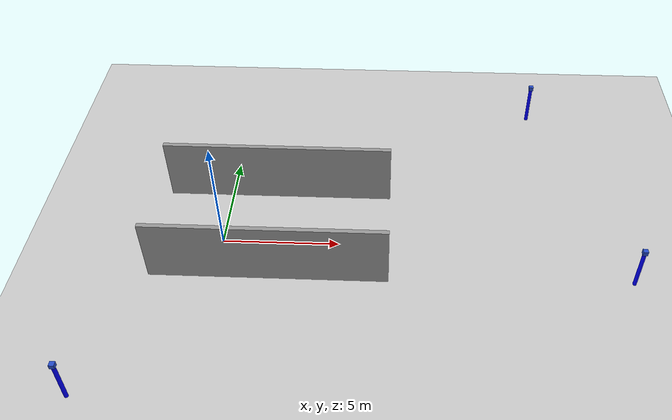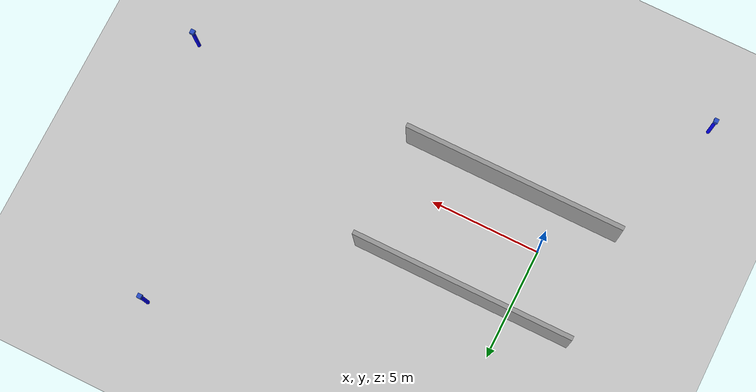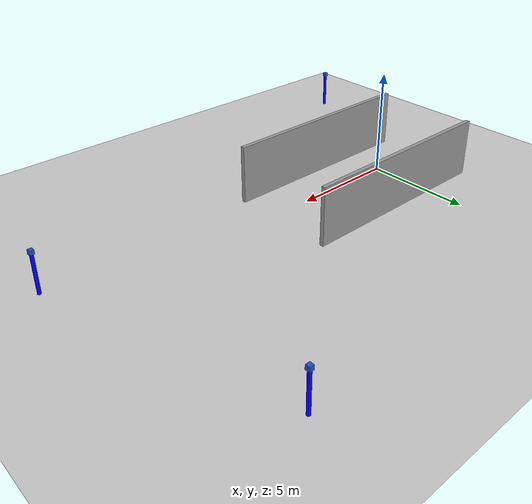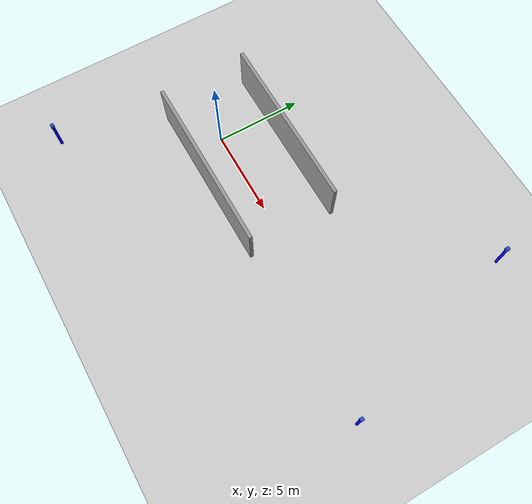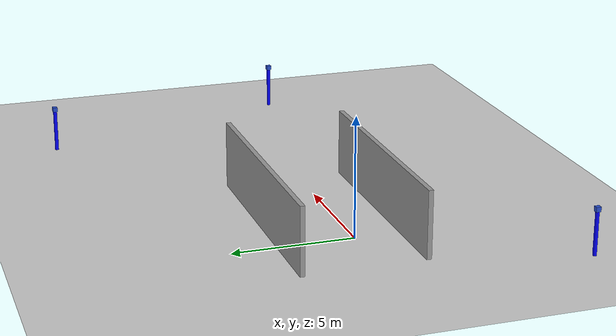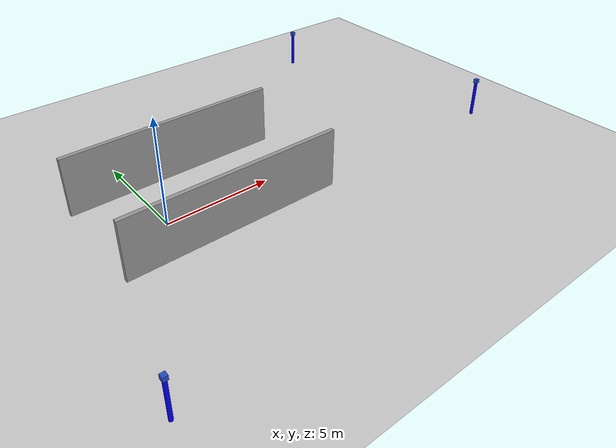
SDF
<sdf version="1.7">
 <world name="simulate_indoor">
  <model name="ground_plane">
   <static>1</static>
   <link name="link">
    <collision name="collision">
     <geometry><plane><normal>0 0 1</normal><size>100 100</size></plane></geometry>
     <surface>
      <contact><collide_bitmask>65535</collide_bitmask></contact>
      <friction><ode><mu>100</mu><mu2>50</mu2></ode></friction>
     </surface>
    </collision>
    <visual name="visual">
     <cast_shadows>0</cast_shadows>
     <geometry><plane><normal>0 0 1</normal><size>100 100</size></plane></geometry>
     <material>
      <script><uri>file://media/materials/scripts/gazebo.material</uri><name>Gazebo/Grey</name></script>
     </material>
    </visual>
   </link>
  </model>
  <model name="grey_wall_short_2">
   <static>1</static>
   <link name="link">
    <pose>0 0 1.4 0 -0 0</pose>
    <collision name="collision"><geometry><box><size>10 0.2 2.8</size></box></geometry></collision>
    <visual name="visual">
     <cast_shadows>0</cast_shadows>
     <geometry><box><size>10 0.2 2.8</size></box></geometry>
     <material>
      <script>
       <uri>model://grey_wall_short_2/materials/scripts</uri>
       <uri>model://grey_wall_short_2/materials/textures</uri>
       <name>vrc/grey_wall_short_2</name>
      </script>
     </material>
    </visual>
   </link>
   <pose>2.14539 3.06824 0 0 -0 0</pose>
  </model>
  <model name="grey_wall_short_2_clone">
   <static>1</static>
   <link name="link">
    <pose>0 0 1.4 0 -0 0</pose>
    <collision name="collision"><geometry><box><size>10 0.2 2.8</size></box></geometry></collision>
    <visual name="visual">
     <cast_shadows>0</cast_shadows>
     <geometry><box><size>10 0.2 2.8</size></box></geometry>
     <material>
      <script>
       <uri>model://grey_wall_short_2/materials/scripts</uri>
       <uri>model://grey_wall_short_2/materials/textures</uri>
       <name>vrc/grey_wall_short_2</name>
      </script>
     </material>
    </visual>
   </link>
   <pose>2.18254 -1.96872 0 0 -0 0</pose>
  </model>
  <model name="UWB_1">
   <link name="link_1">
    <inertial>
     <mass>1</mass>
     <inertia><ixx>0.145833</ixx><ixy>0</ixy><ixz>0</ixz><iyy>0.145833</iyy><iyz>0</iyz><izz>0.125</izz></inertia>
    </inertial>
    <pose>0 0 0.95 0 -0 0</pose>
    <visual name="visual">
     <geometry><cylinder><radius>0.08</radius><length>1.9</length></cylinder></geometry>
     <material>
      <lighting>1</lighting>
      <script><uri>file://media/materials/scripts/gazebo.material</uri><name>Gazebo/Grey</name></script>
      <shader type="pixel"><normal_map>__default__</normal_map></shader>
      <ambient>0 0 1 1</ambient>
      <diffuse>0 0 1 1</diffuse>
      <specular>0 0 1 1</specular>
      <emissive>0 0 1 1</emissive>
     </material>
    </visual>
    <collision name="collision">
     <geometry><cylinder><radius>0.08</radius><length>1.9</length></cylinder></geometry>
     <surface>
      <friction>
       <ode><mu>1</mu><mu2>1</mu2><fdir1>0 0 0</fdir1><slip1>0</slip1><slip2>0</slip2></ode>
       <torsional>
        <coefficient>1</coefficient>
        <patch_radius>0</patch_radius>
        <surface_radius>0</surface_radius>
        <use_patch_radius>1</use_patch_radius>
        <ode><slip>0</slip></ode>
       </torsional>
      </friction>
      <bounce><restitution_coefficient>0</restitution_coefficient><threshold>1e+06</threshold></bounce>
      <contact>
       <collide_without_contact>0</collide_without_contact>
       <collide_without_contact_bitmask>1</collide_without_contact_bitmask>
       <collide_bitmask>1</collide_bitmask>
       <ode>
        <soft_cfm>0</soft_cfm>
        <soft_erp>0.2</soft_erp>
        <kp>1e+13</kp>
        <kd>1</kd>
        <max_vel>0.01</max_vel>
        <min_depth>0</min_depth>
       </ode>
       <bullet>
        <split_impulse>1</split_impulse>
        <split_impulse_penetration_threshold>-0.01</split_impulse_penetration_threshold>
        <soft_cfm>0</soft_cfm>
        <soft_erp>0.2</soft_erp>
        <kp>1e+13</kp>
        <kd>1</kd>
       </bullet>
      </contact>
     </surface>
    </collision>
   </link>
   <link name="link_2">
    <inertial>
     <mass>1</mass>
     <inertia>
      <ixx>0.166667</ixx>
      <ixy>0</ixy>
      <ixz>0</ixz>
      <iyy>0.166667</iyy>
      <iyz>0</iyz>
      <izz>0.166667</izz>
     </inertia>
    </inertial>
    <pose>0 0 1.9 0 -0 0</pose>
    <visual name="visual">
     <geometry><box><size>0.2 0.2 0.2</size></box></geometry>
     <material>
      <lighting>1</lighting>
      <script><uri>file://media/materials/scripts/gazebo.material</uri><name>Gazebo/Blue</name></script>
      <shader type="pixel"><normal_map>__default__</normal_map></shader>
      <ambient>1 0 0 1</ambient>
      <diffuse>1 0 0 1</diffuse>
      <specular>1 0 0 1</specular>
      <emissive>1 0 0 1</emissive>
     </material>
    </visual>
    <collision name="collision">
     <geometry><box><size>0.2 0.2 0.2</size></box></geometry>
     <surface>
      <friction>
       <ode><mu>1</mu><mu2>1</mu2><fdir1>0 0 0</fdir1><slip1>0</slip1><slip2>0</slip2></ode>
       <torsional>
        <coefficient>1</coefficient>
        <patch_radius>0</patch_radius>
        <surface_radius>0</surface_radius>
        <use_patch_radius>1</use_patch_radius>
        <ode><slip>0</slip></ode>
       </torsional>
      </friction>
      <bounce><restitution_coefficient>0</restitution_coefficient><threshold>1e+06</threshold></bounce>
      <contact>
       <collide_without_contact>0</collide_without_contact>
       <collide_without_contact_bitmask>1</collide_without_contact_bitmask>
       <collide_bitmask>1</collide_bitmask>
       <ode>
        <soft_cfm>0</soft_cfm>
        <soft_erp>0.2</soft_erp>
        <kp>1e+13</kp>
        <kd>1</kd>
        <max_vel>0.01</max_vel>
        <min_depth>0</min_depth>
       </ode>
       <bullet>
        <split_impulse>1</split_impulse>
        <split_impulse_penetration_threshold>-0.01</split_impulse_penetration_threshold>
        <soft_cfm>0</soft_cfm>
        <soft_erp>0.2</soft_erp>
        <kp>1e+13</kp>
        <kd>1</kd>
       </bullet>
      </contact>
     </surface>
    </collision>
   </link>
   <static>1</static>
   <pose>17.3274 -1.78527 0 0 -0 0</pose>
  </model>
  <model name="UWB_3">
   <link name="link_1">
    <inertial>
     <mass>1</mass>
     <inertia><ixx>0.145833</ixx><ixy>0</ixy><ixz>0</ixz><iyy>0.145833</iyy><iyz>0</iyz><izz>0.125</izz></inertia>
    </inertial>
    <pose>0 0 0.95 0 -0 0</pose>
    <visual name="visual">
     <geometry><cylinder><radius>0.08</radius><length>1.9</length></cylinder></geometry>
     <material>
      <lighting>1</lighting>
      <script><uri>file://media/materials/scripts/gazebo.material</uri><name>Gazebo/Grey</name></script>
      <shader type="pixel"><normal_map>__default__</normal_map></shader>
      <ambient>0 0 1 1</ambient>
      <diffuse>0 0 1 1</diffuse>
      <specular>0 0 1 1</specular>
      <emissive>0 0 1 1</emissive>
     </material>
    </visual>
    <collision name="collision">
     <geometry><cylinder><radius>0.08</radius><length>1.9</length></cylinder></geometry>
     <surface>
      <friction>
       <ode><mu>1</mu><mu2>1</mu2><fdir1>0 0 0</fdir1><slip1>0</slip1><slip2>0</slip2></ode>
       <torsional>
        <coefficient>1</coefficient>
        <patch_radius>0</patch_radius>
        <surface_radius>0</surface_radius>
        <use_patch_radius>1</use_patch_radius>
        <ode><slip>0</slip></ode>
       </torsional>
      </friction>
      <bounce><restitution_coefficient>0</restitution_coefficient><threshold>1e+06</threshold></bounce>
      <contact>
       <collide_without_contact>0</collide_without_contact>
       <collide_without_contact_bitmask>1</collide_without_contact_bitmask>
       <collide_bitmask>1</collide_bitmask>
       <ode>
        <soft_cfm>0</soft_cfm>
        <soft_erp>0.2</soft_erp>
        <kp>1e+13</kp>
        <kd>1</kd>
        <max_vel>0.01</max_vel>
        <min_depth>0</min_depth>
       </ode>
       <bullet>
        <split_impulse>1</split_impulse>
        <split_impulse_penetration_threshold>-0.01</split_impulse_penetration_threshold>
        <soft_cfm>0</soft_cfm>
        <soft_erp>0.2</soft_erp>
        <kp>1e+13</kp>
        <kd>1</kd>
       </bullet>
      </contact>
     </surface>
    </collision>
   </link>
   <link name="link_2">
    <inertial>
     <mass>1</mass>
     <inertia>
      <ixx>0.166667</ixx>
      <ixy>0</ixy>
      <ixz>0</ixz>
      <iyy>0.166667</iyy>
      <iyz>0</iyz>
      <izz>0.166667</izz>
     </inertia>
    </inertial>
    <pose>0 0 1.9 0 -0 0</pose>
    <visual name="visual">
     <geometry><box><size>0.2 0.2 0.2</size></box></geometry>
     <material>
      <lighting>1</lighting>
      <script><uri>file://media/materials/scripts/gazebo.material</uri><name>Gazebo/Blue</name></script>
      <shader type="pixel"><normal_map>__default__</normal_map></shader>
      <ambient>1 0 0 1</ambient>
      <diffuse>1 0 0 1</diffuse>
      <specular>1 0 0 1</specular>
      <emissive>1 0 0 1</emissive>
     </material>
    </visual>
    <collision name="collision">
     <geometry><box><size>0.2 0.2 0.2</size></box></geometry>
     <surface>
      <friction>
       <ode><mu>1</mu><mu2>1</mu2><fdir1>0 0 0</fdir1><slip1>0</slip1><slip2>0</slip2></ode>
       <torsional>
        <coefficient>1</coefficient>
        <patch_radius>0</patch_radius>
        <surface_radius>0</surface_radius>
        <use_patch_radius>1</use_patch_radius>
        <ode><slip>0</slip></ode>
       </torsional>
      </friction>
      <bounce><restitution_coefficient>0</restitution_coefficient><threshold>1e+06</threshold></bounce>
      <contact>
       <collide_without_contact>0</collide_without_contact>
       <collide_without_contact_bitmask>1</collide_without_contact_bitmask>
       <collide_bitmask>1</collide_bitmask>
       <ode>
        <soft_cfm>0</soft_cfm>
        <soft_erp>0.2</soft_erp>
        <kp>1e+13</kp>
        <kd>1</kd>
        <max_vel>0.01</max_vel>
        <min_depth>0</min_depth>
       </ode>
       <bullet>
        <split_impulse>1</split_impulse>
        <split_impulse_penetration_threshold>-0.01</split_impulse_penetration_threshold>
        <soft_cfm>0</soft_cfm>
        <soft_erp>0.2</soft_erp>
        <kp>1e+13</kp>
        <kd>1</kd>
       </bullet>
      </contact>
     </surface>
    </collision>
   </link>
   <static>1</static>
   <pose>-4.39903 -8.07472 0 0 -0 0</pose>
  </model>
  <model name="UWB_5">
   <link name="link_1">
    <inertial>
     <mass>1</mass>
     <inertia><ixx>0.145833</ixx><ixy>0</ixy><ixz>0</ixz><iyy>0.145833</iyy><iyz>0</iyz><izz>0.125</izz></inertia>
    </inertial>
    <pose>0 0 0.95 0 -0 0</pose>
    <visual name="visual">
     <geometry><cylinder><radius>0.08</radius><length>1.9</length></cylinder></geometry>
     <material>
      <lighting>1</lighting>
      <script><uri>file://media/materials/scripts/gazebo.material</uri><name>Gazebo/Grey</name></script>
      <shader type="pixel"><normal_map>__default__</normal_map></shader>
      <ambient>0 0 1 1</ambient>
      <diffuse>0 0 1 1</diffuse>
      <specular>0 0 1 1</specular>
      <emissive>0 0 1 1</emissive>
     </material>
    </visual>
    <collision name="collision">
     <geometry><cylinder><radius>0.08</radius><length>1.9</length></cylinder></geometry>
     <surface>
      <friction>
       <ode><mu>1</mu><mu2>1</mu2><fdir1>0 0 0</fdir1><slip1>0</slip1><slip2>0</slip2></ode>
       <torsional>
        <coefficient>1</coefficient>
        <patch_radius>0</patch_radius>
        <surface_radius>0</surface_radius>
        <use_patch_radius>1</use_patch_radius>
        <ode><slip>0</slip></ode>
       </torsional>
      </friction>
      <bounce><restitution_coefficient>0</restitution_coefficient><threshold>1e+06</threshold></bounce>
      <contact>
       <collide_without_contact>0</collide_without_contact>
       <collide_without_contact_bitmask>1</collide_without_contact_bitmask>
       <collide_bitmask>1</collide_bitmask>
       <ode>
        <soft_cfm>0</soft_cfm>
        <soft_erp>0.2</soft_erp>
        <kp>1e+13</kp>
        <kd>1</kd>
        <max_vel>0.01</max_vel>
        <min_depth>0</min_depth>
       </ode>
       <bullet>
        <split_impulse>1</split_impulse>
        <split_impulse_penetration_threshold>-0.01</split_impulse_penetration_threshold>
        <soft_cfm>0</soft_cfm>
        <soft_erp>0.2</soft_erp>
        <kp>1e+13</kp>
        <kd>1</kd>
       </bullet>
      </contact>
     </surface>
    </collision>
   </link>
   <link name="link_2">
    <inertial>
     <mass>1</mass>
     <inertia>
      <ixx>0.166667</ixx>
      <ixy>0</ixy>
      <ixz>0</ixz>
      <iyy>0.166667</iyy>
      <iyz>0</iyz>
      <izz>0.166667</izz>
     </inertia>
    </inertial>
    <pose>0 0 1.9 0 -0 0</pose>
    <visual name="visual">
     <geometry><box><size>0.2 0.2 0.2</size></box></geometry>
     <material>
      <lighting>1</lighting>
      <script><uri>file://media/materials/scripts/gazebo.material</uri><name>Gazebo/Blue</name></script>
      <shader type="pixel"><normal_map>__default__</normal_map></shader>
      <ambient>1 0 0 1</ambient>
      <diffuse>1 0 0 1</diffuse>
      <specular>1 0 0 1</specular>
      <emissive>1 0 0 1</emissive>
     </material>
    </visual>
    <collision name="collision">
     <geometry><box><size>0.2 0.2 0.2</size></box></geometry>
     <surface>
      <friction>
       <ode><mu>1</mu><mu2>1</mu2><fdir1>0 0 0</fdir1><slip1>0</slip1><slip2>0</slip2></ode>
       <torsional>
        <coefficient>1</coefficient>
        <patch_radius>0</patch_radius>
        <surface_radius>0</surface_radius>
        <use_patch_radius>1</use_patch_radius>
        <ode><slip>0</slip></ode>
       </torsional>
      </friction>
      <bounce><restitution_coefficient>0</restitution_coefficient><threshold>1e+06</threshold></bounce>
      <contact>
       <collide_without_contact>0</collide_without_contact>
       <collide_without_contact_bitmask>1</collide_without_contact_bitmask>
       <collide_bitmask>1</collide_bitmask>
       <ode>
        <soft_cfm>0</soft_cfm>
        <soft_erp>0.2</soft_erp>
        <kp>1e+13</kp>
        <kd>1</kd>
        <max_vel>0.01</max_vel>
        <min_depth>0</min_depth>
       </ode>
       <bullet>
        <split_impulse>1</split_impulse>
        <split_impulse_penetration_threshold>-0.01</split_impulse_penetration_threshold>
        <soft_cfm>0</soft_cfm>
        <soft_erp>0.2</soft_erp>
        <kp>1e+13</kp>
        <kd>1</kd>
       </bullet>
      </contact>
     </surface>
    </collision>
   </link>
   <static>1</static>
   <pose>13.9575 9.25358 0 0 -0 0</pose>
  </model>
 </world>
</sdf>
